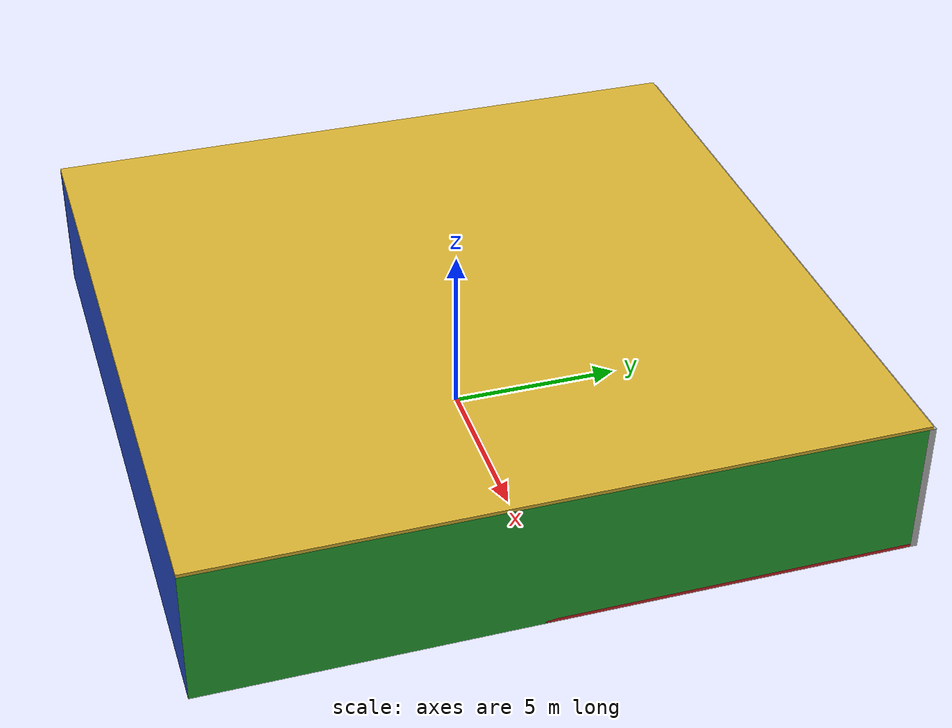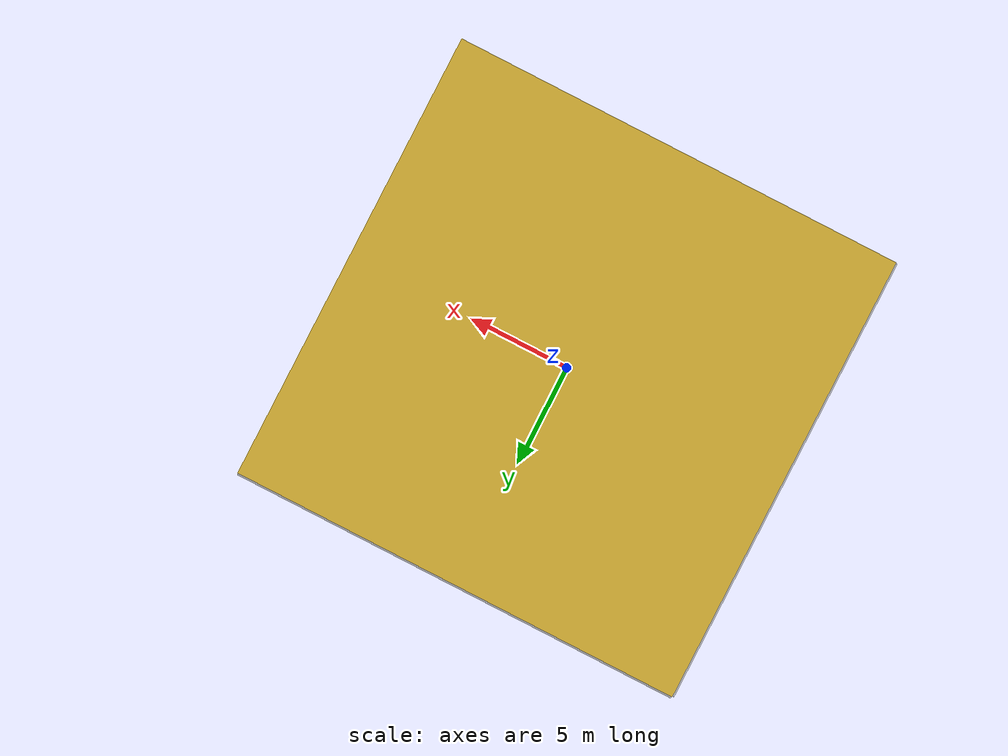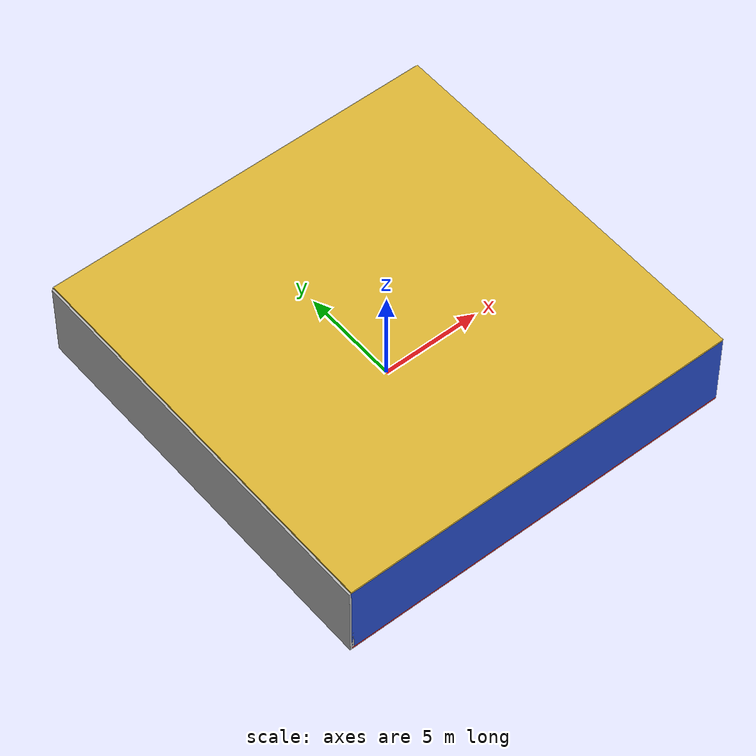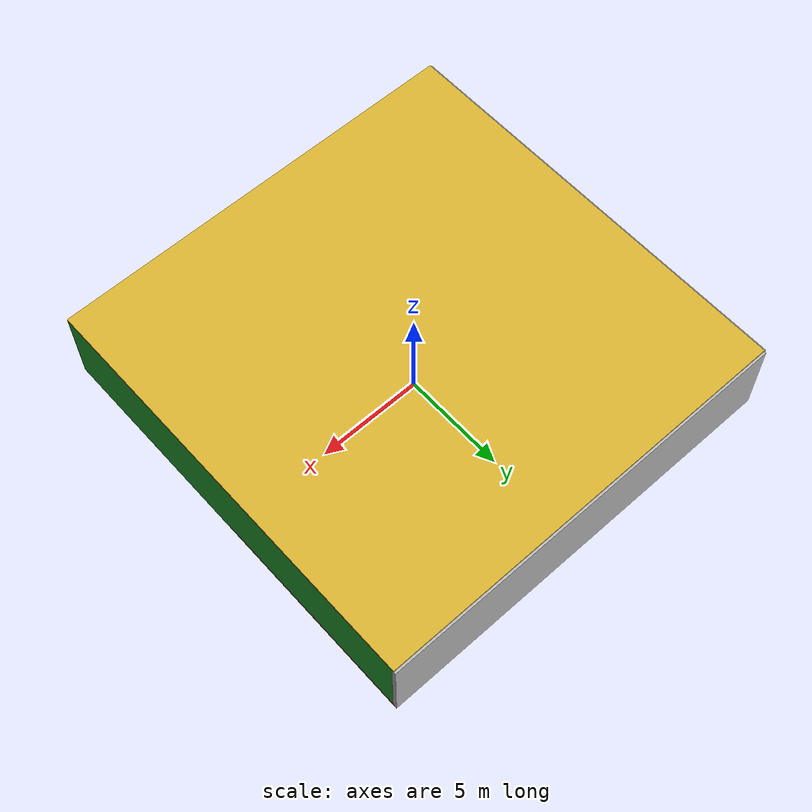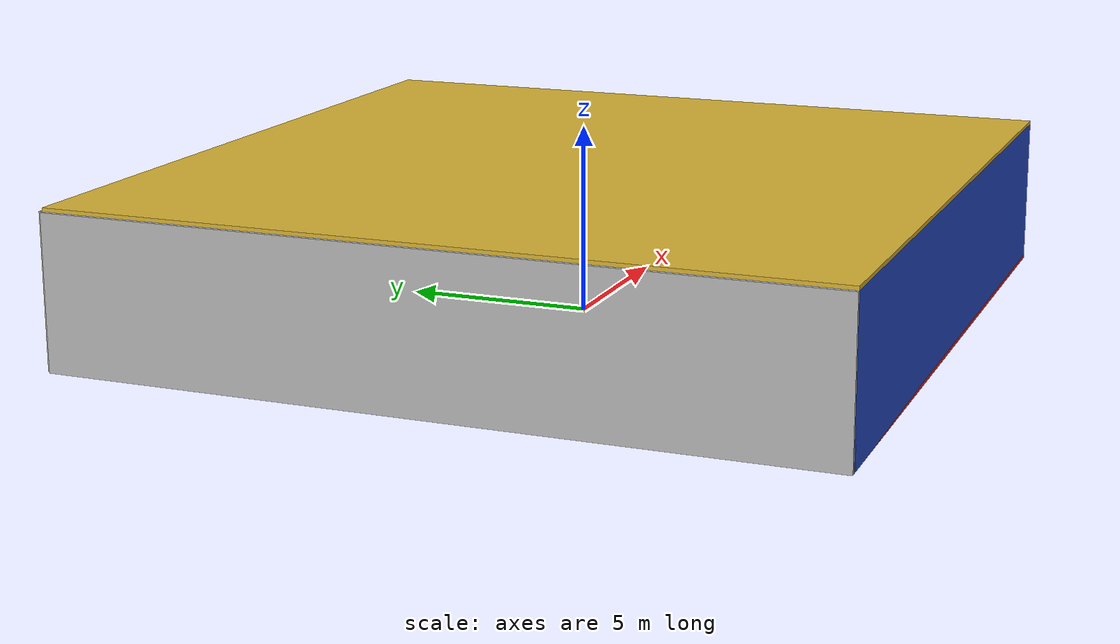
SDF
<sdf version="1.4">
 <world name="default">
  <physics type="ode">
   <max_step_size>0.001</max_step_size>
   <real_time_factor>1</real_time_factor>
   <real_time_update_rate>1000</real_time_update_rate>
   <gravity>0 0 -9.8</gravity>
  </physics>
  <scene><ambient>0.4 0.4 0.4 1</ambient><background>0.7 0.7 0.7 1</background><shadows>1</shadows></scene>
  <model name="Surrounding">
   <static>1</static>
   <link name="Ceiling">
    <collision name="Ceiling_Collision"><geometry><box><size>20 20 0.1</size></box></geometry></collision>
    <visual name="Ceiling_Visual">
     <geometry><box><size>20 20 0.1</size></box></geometry>
     <material>
      <script><uri>file://media/materials/scripts/gazebo.material</uri><name>Gazebo/Gold</name></script>
     </material>
    </visual>
    <pose>0 0 4.05 0 0 0</pose>
   </link>
   <link name="Wall_South">
    <collision name="Wall_South_Collision">
     <geometry><box><size>20 0 4</size></box></geometry>
     <pose>0 0 2 0 -0 0</pose>
    </collision>
    <visual name="Wall_South_Visual">
     <pose>0 0 2 0 -0 0</pose>
     <geometry><box><size>20 0 4</size></box></geometry>
     <material>
      <script><uri>file://media/materials/scripts/gazebo.material</uri><name>Gazebo/BlueGlow</name></script>
     </material>
    </visual>
    <velocity_decay><linear>0</linear><angular>0</angular></velocity_decay>
    <pose>0 -10 0 0 -0 0</pose>
   </link>
   <link name="Wall_East">
    <collision name="Wall_21_Collision">
     <geometry><box><size>20 0 4</size></box></geometry>
     <pose>0 0 2 0 -0 0</pose>
    </collision>
    <visual name="Wall_21_Visual">
     <pose>0 0 2 0 -0 0</pose>
     <geometry><box><size>20 0 4</size></box></geometry>
     <material>
      <script><uri>file://media/materials/scripts/gazebo.material</uri><name>Gazebo/Green</name></script>
     </material>
    </visual>
    <velocity_decay><linear>0</linear><angular>0</angular></velocity_decay>
    <pose>10 0 0 0 -0 1.5708</pose>
   </link>
   <link name="Wall_North">
    <collision name="Wall_22_Collision">
     <geometry><box><size>20 0.2 4</size></box></geometry>
     <pose>0 0 2 0 -0 0</pose>
    </collision>
    <visual name="Wall_22_Visual">
     <pose>0 0 2 0 -0 0</pose>
     <geometry><box><size>20 0.2 4</size></box></geometry>
     <material>
      <script><uri>file://media/materials/scripts/gazebo.material</uri><name>Gazebo/LightOff</name></script>
     </material>
    </visual>
    <velocity_decay><linear>0</linear><angular>0</angular></velocity_decay>
    <pose>0 10 0 0 -0 0</pose>
   </link>
   <link name="Wall_West">
    <collision name="Wall_23_Collision">
     <geometry><box><size>20 0.2 4</size></box></geometry>
     <pose>0 0 2 0 -0 0</pose>
    </collision>
    <visual name="Wall_23_Visual">
     <pose>0 0 2 0 -0 0</pose>
     <geometry><box><size>20 0.2 4</size></box></geometry>
     <material>
      <script><uri>file://media/materials/scripts/gazebo.material</uri><name>Gazebo/LightOff</name></script>
     </material>
    </visual>
    <velocity_decay><linear>0</linear><angular>0</angular></velocity_decay>
    <pose>-10 0 0 0 0 -1.5708</pose>
   </link>
   <link name="Ground_link">
    <collision name="collision">
     <pose>0 0 .05 0 -0 0</pose>
     <geometry><box><size>20 20 0.1</size></box></geometry>
    </collision>
    <visual name="visual">
     <pose>0 0 .05 0 -0 0</pose>
     <geometry><box><size>20 20 0.1</size></box></geometry>
     <material>
      <script><uri>file://media/materials/scripts/gazebo.material</uri><name>Gazebo/RedBright</name></script>
     </material>
    </visual>
   </link>
   <static>1</static>
  </model>
  <spherical_coordinates>
   <surface_model>EARTH_WGS84</surface_model>
   <latitude_deg>0</latitude_deg>
   <longitude_deg>0</longitude_deg>
   <elevation>0</elevation>
   <heading_deg>0</heading_deg>
  </spherical_coordinates>
  <light name="lightball_0" type="diffuse">
   <diffuse>0.8 0.8 0.8 1</diffuse>
   <specular>0.2 0.2 0.2 1</specular>
   <attenuation>
    <range>100</range>
    <constant>0.7</constant>
    <linear>0.01</linear>
    <quadratic>0.001</quadratic>
   </attenuation>
   <direction>-0.5 0.1 -0.9</direction>
   <pose>1.65495724752 1.50468795495 2.91135195972 0 0 0</pose>
  </light>
  <light name="lightball_1" type="diffuse">
   <diffuse>0.8 0.8 0.8 1</diffuse>
   <specular>0.2 0.2 0.2 1</specular>
   <attenuation>
    <range>100</range>
    <constant>0.7</constant>
    <linear>0.01</linear>
    <quadratic>0.001</quadratic>
   </attenuation>
   <direction>-0.5 0.1 -0.9</direction>
   <pose>-6.36730136726 -6.3229984159 0.916821271856 0 0 0</pose>
  </light>
  <include><uri>model://cabinet</uri><pose>-7.5234372288 -0.820415752771 0 0 0 0.723641741462</pose></include>
  <include><uri>model://cabinet</uri><pose>-4.79019414303 4.26328223083 0 0 0 0.0189720302834</pose></include>
  <include><uri>model://table</uri><pose>2.10817318355 1.42658537566 0 0 0 1.8107261784</pose></include>
  <include>
   <uri>model://construction_cone</uri>
   <pose>1.47621979432 4.25972956847 0 0 0 2.39574183034</pose>
  </include>
  <include>
   <uri>model://textured_shapes</uri>
   <pose>4.46910397309 -1.84305816499 0 0 0 2.37655649844</pose>
  </include>
  <include>
   <uri>model://robocup_3Dsim_goal</uri>
   <pose>5.0165617965 1.09686174552 0 0 0 2.34751399517</pose>
  </include>
 </world>
</sdf>

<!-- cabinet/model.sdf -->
<sdf version="1.5">
  <model name="cabinet">
    <static>true</static>
    <link name="cabinet_bottom_plate">
      <inertial>
        <pose>0 0 -1 0 0 0</pose>
        <inertia>
          <ixx>2.050000</ixx>
          <ixy>0</ixy>
          <ixz>0</ixz>
          <iyy>2.050000</iyy>
          <iyz>0</iyz>
          <izz>2.050000</izz>
        </inertia>
        <mass>25.000000</mass>
      </inertial>
      <collision name="cabinet_bottom_plate_geom">
        <pose>0 0 0.010000 0 0 0</pose>
        <geometry>
          <box>
            <size>0.450000 0.450000 0.020000</size>
          </box>
        </geometry>
      </collision>
      <visual name="cabinet_bottom_plate_geom_visual">
        <pose>0 0 0.010000 0 0 0</pose>
        <geometry>
          <box>
            <size>0.450000 0.450000 0.020000</size>
          </box>
        </geometry>
        <material>
          <script>
            <uri>model://media/materials/scripts/gazebo.material</uri>
            <name>Gazebo/Wood</name>
          </script>
        </material>
      </visual>
      <collision name="cabinet_bottom_plate_geom_cabinet_back_plate">
        <pose>0.235000 0 0.510000 0 0 0</pose>
        <geometry>
          <box>
            <size>0.020000 0.450000 1.020000</size>
          </box>
        </geometry>
      </collision>
      <visual name="cabinet_bottom_plate_geom_cabinet_back_plate_visual">
        <pose>0.235000 0 0.510000 0 0 0</pose>
        <geometry>
          <box>
            <size>0.020000 0.450000 1.020000</size>
          </box>
        </geometry>
        <material>
          <script>
            <uri>model://media/materials/scripts/gazebo.material</uri>
            <name>Gazebo/Wood</name>
          </script>
        </material>
      </visual>
      <collision name="cabinet_bottom_plate_geom_cabinet_left_plate">
        <pose>0 0.235000 0.510000 0 0 0</pose>
        <geometry>
          <box>
            <size>0.450000 0.020000 1.020000</size>
          </box>
        </geometry>
      </collision>
      <visual name="cabinet_bottom_plate_geom_cabinet_left_plate_visual">
        <pose>0 0.235000 0.510000 0 0 0</pose>
        <geometry>
          <box>
            <size>0.450000 0.020000 1.020000</size>
          </box>
        </geometry>
        <material>
          <script>
            <uri>model://media/materials/scripts/gazebo.material</uri>
            <name>Gazebo/Wood</name>
          </script>
        </material>
      </visual>
      <collision name="cabinet_bottom_plate_geom_cabinet_middle_plate">
        <pose>0 0 0.510000 0 0 0</pose>
        <geometry>
          <box>
            <size>0.450000 0.450000 0.020000</size>
          </box>
        </geometry>
      </collision>
      <visual name="cabinet_bottom_plate_geom_cabinet_middle_plate_visual">
        <pose>0 0 0.510000 0 0 0</pose>
        <geometry>
          <box>
            <size>0.450000 0.450000 0.020000</size>
          </box>
        </geometry>
        <material>
          <script>
            <uri>model://media/materials/scripts/gazebo.material</uri>
            <name>Gazebo/Wood</name>
          </script>
        </material>
      </visual>
      <collision name="cabinet_bottom_plate_geom_cabinet_right_plate">
        <pose>0 -0.235000 0.510000 0 0 0</pose>
        <geometry>
          <box>
            <size>0.450000 0.020000 1.020000</size>
          </box>
        </geometry>
      </collision>
      <visual name="cabinet_bottom_plate_geom_cabinet_right_plate_visual">
        <pose>0 -0.235000 0.510000 0 0 0</pose>
        <geometry>
          <box>
            <size>0.450000 0.020000 1.020000</size>
          </box>
        </geometry>
        <material>
          <script>
            <uri>model://media/materials/scripts/gazebo.material</uri>
            <name>Gazebo/Wood</name>
          </script>
        </material>
      </visual>
      <collision name="cabinet_bottom_plate_geom_cabinet_top_plate">
        <pose>0 0 1.010000 0 0 0</pose>
        <geometry>
          <box>
            <size>0.450000 0.450000 0.020000</size>
          </box>
        </geometry>
      </collision>
      <visual name="cabinet_bottom_plate_geom_cabinet_top_plate_visual">
        <pose>0 0 1.010000 0 0 0</pose>
        <geometry>
          <box>
            <size>0.450000 0.450000 0.020000</size>
          </box>
        </geometry>
        <material>
          <script>
            <uri>model://media/materials/scripts/gazebo.material</uri>
            <name>Gazebo/Wood</name>
          </script>
        </material>
      </visual>
    </link>
  </model>
</sdf>

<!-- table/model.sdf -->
<sdf version="1.5">
  <model name="table">
    <static>true</static>
    <link name="link">
      <collision name="surface">
        <pose>0 0 1.0 0 0 0</pose>
        <geometry>
          <box>
            <size>1.5 0.8 0.03</size>
          </box>
        </geometry>
        <surface>
          <friction>
            <ode>
              <mu>0.6</mu>
              <mu2>0.6</mu2>
            </ode>
          </friction>
        </surface>
      </collision>
      <visual name="visual1">
        <pose>0 0 1.0 0 0 0</pose>
        <geometry>
          <box>
            <size>1.5 0.8 0.03</size>
          </box>
        </geometry>
        <material>
          <script>
            <uri>model://media/materials/scripts/gazebo.material</uri>
            <name>Gazebo/Wood</name>
          </script>
        </material>
      </visual>
      <collision name="front_left_leg">
        <pose>0.68 0.38 0.5 0 0 0</pose>
        <geometry>
          <cylinder>
            <radius>0.02</radius>
            <length>1.0</length>
          </cylinder>
        </geometry>
      </collision>
      <visual name="front_left_leg">
        <pose>0.68 0.38 0.5 0 0 0</pose>
        <geometry>
          <cylinder>
            <radius>0.02</radius>
            <length>1.0</length>
          </cylinder>
        </geometry>
        <material>
          <script>
            <uri>model://media/materials/scripts/gazebo.material</uri>
            <name>Gazebo/Grey</name>
          </script>
        </material>
      </visual>
      <collision name="front_right_leg">
        <pose>0.68 -0.38 0.5 0 0 0</pose>
        <geometry>
          <cylinder>
            <radius>0.02</radius>
            <length>1.0</length>
          </cylinder>
        </geometry>
      </collision>
      <visual name="front_right_leg">
        <pose>0.68 -0.38 0.5 0 0 0</pose>
        <geometry>
          <cylinder>
            <radius>0.02</radius>
            <length>1.0</length>
          </cylinder>
        </geometry>
        <material>
          <script>
            <uri>model://media/materials/scripts/gazebo.material</uri>
            <name>Gazebo/Grey</name>
          </script>
        </material>
      </visual>
      <collision name="back_right_leg">
        <pose>-0.68 -0.38 0.5 0 0 0</pose>
        <geometry>
          <cylinder>
            <radius>0.02</radius>
            <length>1.0</length>
          </cylinder>
        </geometry>
      </collision>
      <visual name="back_right_leg">
        <pose>-0.68 -0.38 0.5 0 0 0</pose>
        <geometry>
          <cylinder>
            <radius>0.02</radius>
            <length>1.0</length>
          </cylinder>
        </geometry>
        <material>
          <script>
            <uri>model://media/materials/scripts/gazebo.material</uri>
            <name>Gazebo/Grey</name>
          </script>
        </material>
      </visual>
      <collision name="back_left_leg">
        <pose>-0.68 0.38 0.5 0 0 0</pose>
        <geometry>
          <cylinder>
            <radius>0.02</radius>
            <length>1.0</length>
          </cylinder>
        </geometry>
      </collision>
      <visual name="back_left_leg">
        <pose>-0.68 0.38 0.5 0 0 0</pose>
        <geometry>
          <cylinder>
            <radius>0.02</radius>
            <length>1.0</length>
          </cylinder>
        </geometry>
        <material>
          <script>
            <uri>model://media/materials/scripts/gazebo.material</uri>
            <name>Gazebo/Grey</name>
          </script>
        </material>
      </visual>
    </link>
  </model>
</sdf>

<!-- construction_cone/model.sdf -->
<sdf version="1.5">
  <model name="Construction Cone">
    <link name="link">
      <collision name="collision">
        <geometry>
          <mesh>
            <scale>10 10 10</scale>
            <uri>file://isr-testbed/construction_cone/meshes/construction_cone.dae</uri>
          </mesh>
        </geometry>
      </collision>
      <visual name="visual">
        <geometry>
          <mesh>
            <scale>10 10 10</scale>
            <uri>file://isr-testbed/construction_cone/meshes/construction_cone.dae</uri>
          </mesh>
        </geometry>
      </visual>
    </link>
  </model>
</sdf>

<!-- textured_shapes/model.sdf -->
<sdf version="1.6">
  <model name="textured_shapes">
    <pose>0 0 0.5 0 0 0</pose>
    <link name="box">
      <pose>0 -1.5 0 0 0 0</pose>
      <collision name="collision">
        <geometry>
          <box>
            <size>1 1 1</size>
          </box>
        </geometry>
      </collision>
      <visual name="visual">
        <geometry>
          <box>
            <size>1 1 1</size>
          </box>
        </geometry>
        <material>
          <script>
            <uri>model://../model_source/models/textured_shapes/materials/scripts</uri>
            <uri>model://../model_source/models/textured_shapes/materials/textures</uri>
            <name>TexturedShape/Squares</name>
          </script>
        </material>
      </visual>
    </link>
    <link name="sphere">
      <collision name="collision">
        <geometry>
          <sphere>
            <radius>0.5</radius>
          </sphere>
        </geometry>
      </collision>
      <visual name="visual">
        <geometry>
          <sphere>
            <radius>0.5</radius>
          </sphere>
        </geometry>
        <material>
          <script>
            <uri>model://../model_source/models/textured_shapes/materials/scripts</uri>
            <uri>model://../model_source/models/textured_shapes/materials/textures</uri>
            <name>TexturedShape/Squares</name>
          </script>
        </material>
      </visual>
    </link>
    <link name="cylinder">
      <pose>0 1.5 0 0 0 0</pose>
      <collision name="collision">
        <geometry>
          <cylinder>
            <radius>0.5</radius>
            <length>1</length>
          </cylinder>
        </geometry>
      </collision>
      <visual name="visual">
        <geometry>
          <cylinder>
            <radius>0.5</radius>
            <length>1</length>
          </cylinder>
        </geometry>
        <material>
          <script>
            <uri>model://../model_source/models/textured_shapes/materials/scripts</uri>
            <uri>model://../model_source/models/textured_shapes/materials/textures</uri>
            <name>TexturedShape/Squares</name>
          </script>
        </material>
      </visual>
    </link>
  </model>
</sdf>

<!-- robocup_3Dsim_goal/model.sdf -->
<sdf version="1.5">
  <model name="robocup_3d_goal">
    <static>true</static>
    <link name="left_post">
      <pose>0 1.05 0.45 0 0 0</pose>
      <collision name="collision">
        <geometry>
          <cylinder>
            <radius>0.05</radius>
            <length>0.9</length>
          </cylinder>
        </geometry>
      </collision>
      <visual name="visual">
        <geometry>
          <cylinder>
            <radius>0.05</radius>
            <length>0.9</length>
          </cylinder>
        </geometry>
        <material>
          <script>
            <uri>file://media/materials/scripts/gazebo.material</uri>
            <name>Gazebo/ZincYellow</name>
          </script>
        </material>
      </visual>
    </link>
    <link name="left_support_horiz_lower">
      <pose>0.30 1.05 0.01 0 0 0</pose>
      <collision name="collision">
        <geometry>
          <box>
            <size>0.50 0.02 0.02</size>
          </box>
        </geometry>
      </collision>
      <visual name="visual">
        <geometry>
          <box>
            <size>0.50 0.02 0.02</size>
          </box>
        </geometry>
        <material>
          <script>
            <uri>file://media/materials/scripts/gazebo.material</uri>
            <name>Gazebo/White</name>
          </script>
        </material>
      </visual>
    </link>
    <link name="left_support_horiz_upper">
      <pose>0.30 1.05 0.79 0 0 0</pose>
      <collision name="collision">
        <geometry>
          <box>
            <size>0.50 0.02 0.02</size>
          </box>
        </geometry>
      </collision>
      <visual name="visual">
        <geometry>
          <box>
            <size>0.50 0.02 0.02</size>
          </box>
        </geometry>
        <material>
          <script>
            <uri>file://media/materials/scripts/gazebo.material</uri>
            <name>Gazebo/White</name>
          </script>
        </material>
      </visual>
    </link>
    <link name="left_support_vertical">
      <pose>0.56 1.05 0.4 0 1.5708 0</pose>
      <collision name="collision">
        <geometry>
          <box>
            <size>0.80 0.02 0.02</size>
          </box>
        </geometry>
      </collision>
      <visual name="visual">
        <geometry>
          <box>
            <size>0.80 0.02 0.02</size>
          </box>
        </geometry>
        <material>
          <script>
            <uri>file://media/materials/scripts/gazebo.material</uri>
            <name>Gazebo/White</name>
          </script>
        </material>
      </visual>
    </link>
    <link name="right_support_horiz_lower">
      <pose>0.30 -1.05 0.01 0 0 0</pose>
      <collision name="collision">
        <geometry>
          <box>
            <size>0.50 0.02 0.02</size>
          </box>
        </geometry>
      </collision>
      <visual name="visual">
        <geometry>
          <box>
            <size>0.50 0.02 0.02</size>
          </box>
        </geometry>
        <material>
          <script>
            <uri>file://media/materials/scripts/gazebo.material</uri>
            <name>Gazebo/White</name>
          </script>
        </material>
      </visual>
    </link>
    <link name="right_support_horiz_upper">
      <pose>0.30 -1.05 0.79 0 0 0</pose>
      <collision name="collision">
        <geometry>
          <box>
            <size>0.50 0.02 0.02</size>
          </box>
        </geometry>
      </collision>
      <visual name="visual">
        <geometry>
          <box>
            <size>0.50 0.02 0.02</size>
          </box>
        </geometry>
        <material>
          <script>
            <uri>file://media/materials/scripts/gazebo.material</uri>
            <name>Gazebo/White</name>
          </script>
        </material>
      </visual>
    </link>
    <link name="right_support_vertical">
      <pose>0.56 -1.05 0.4 0 1.5708 0</pose>
      <collision name="collision">
        <geometry>
          <box>
            <size>0.80 0.02 0.02</size>
          </box>
        </geometry>
      </collision>
      <visual name="visual">
        <geometry>
          <box>
            <size>0.80 0.02 0.02</size>
          </box>
        </geometry>
        <material>
          <script>
            <uri>file://media/materials/scripts/gazebo.material</uri>
            <name>Gazebo/White</name>
          </script>
        </material>
      </visual>
    </link>
    <link name="center_support_horiz_lower">
      <pose>0.56 0 0.01 0 1.5708 0</pose>
      <collision name="collision">
        <geometry>
          <box>
            <size>0.02 2.08 0.02</size>
          </box>
        </geometry>
      </collision>
      <visual name="visual">
        <geometry>
          <box>
            <size>0.02 2.08 0.02</size>
          </box>
        </geometry>
        <material>
          <script>
            <uri>file://media/materials/scripts/gazebo.material</uri>
            <name>Gazebo/White</name>
          </script>
        </material>
      </visual>
    </link>
    <link name="center_support_horiz_upper">
      <pose>0.56 0 0.79 0 1.5708 0</pose>
      <collision name="collision">
        <geometry>
          <box>
            <size>0.02 2.08 0.02</size>
          </box>
        </geometry>
      </collision>
      <visual name="visual">
        <geometry>
          <box>
            <size>0.02 2.08 0.02</size>
          </box>
        </geometry>
        <material>
          <script>
            <uri>file://media/materials/scripts/gazebo.material</uri>
            <name>Gazebo/White</name>
          </script>
        </material>
      </visual>
    </link>
    <link name="right_post">
      <pose>0 -1.05 0.45 0 0 0</pose>
      <collision name="collision">
        <geometry>
          <cylinder>
            <radius>0.05</radius>
            <length>0.9</length>
          </cylinder>
        </geometry>
      </collision>
      <visual name="visual">
        <geometry>
          <cylinder>
            <radius>0.05</radius>
            <length>0.9</length>
          </cylinder>
        </geometry>
        <material>
          <script>
            <uri>file://media/materials/scripts/gazebo.material</uri>
            <name>Gazebo/ZincYellow</name>
          </script>
        </material>
      </visual>
    </link>
    <link name="crossbar">
      <pose>0 0 0.85 1.57 1.57 0</pose>
      <collision name="collision">
        <geometry>
          <cylinder>
            <radius>0.05</radius>
            <length>2.0</length>
          </cylinder>
        </geometry>
      </collision>
      <visual name="visual">
        <geometry>
          <cylinder>
            <radius>0.05</radius>
            <length>2.0</length>
          </cylinder>
        </geometry>
        <material>
          <script>
            <uri>file://media/materials/scripts/gazebo.material</uri>
            <name>Gazebo/ZincYellow</name>
          </script>
        </material>
      </visual>
    </link>
    <link name="center_net">
      <pose>0.56 0 0.40 0 0 0</pose>
      <collision name="collision">
        <geometry>
          <box>
            <size>0.01 2.1 0.80</size>
          </box>
        </geometry>
      </collision>
      <visual name="visual">
        <geometry>
          <box>
            <size>0.01 2.1 0.80</size>
          </box>
        </geometry>
        <material>
          <script>
            <uri>model://../model_source/models/robocup09_spl_field/materials/scripts/</uri>
            <uri>model://../model_source/models/robocup09_spl_field/materials/textures/</uri>
            <name>RoboCup/Net</name>
          </script>
        </material>
      </visual>
    </link>
    <link name="left_net">
      <pose>0.30 1.05 0.40 0 0 0</pose>
      <collision name="collision">
        <geometry>
          <box>
            <size>0.50 0.01 0.76</size>
          </box>
        </geometry>
      </collision>
      <visual name="visual">
        <geometry>
          <box>
            <size>0.50 0.01 0.76</size>
          </box>
        </geometry>
        <material>
          <script>
            <uri>model://../model_source/models/robocup09_spl_field/materials/scripts/</uri>
            <uri>model://../model_source/models/robocup09_spl_field/materials/textures/</uri>
            <name>RoboCup/Net</name>
          </script>
        </material>
      </visual>
    </link>
    <link name="right_net">
      <pose>0.30 -1.05 0.40 0 0 0</pose>
      <collision name="collision">
        <geometry>
          <box>
            <size>0.50 0.01 0.76</size>
          </box>
        </geometry>
      </collision>
      <visual name="visual">
        <geometry>
          <box>
            <size>0.50 0.01 0.76</size>
          </box>
        </geometry>
        <material>
          <script>
            <uri>model://../model_source/models/robocup09_spl_field/materials/scripts/</uri>
            <uri>model://../model_source/models/robocup09_spl_field/materials/textures/</uri>
            <name>RoboCup/Net</name>
          </script>
        </material>
      </visual>
    </link>
  </model>
</sdf>
